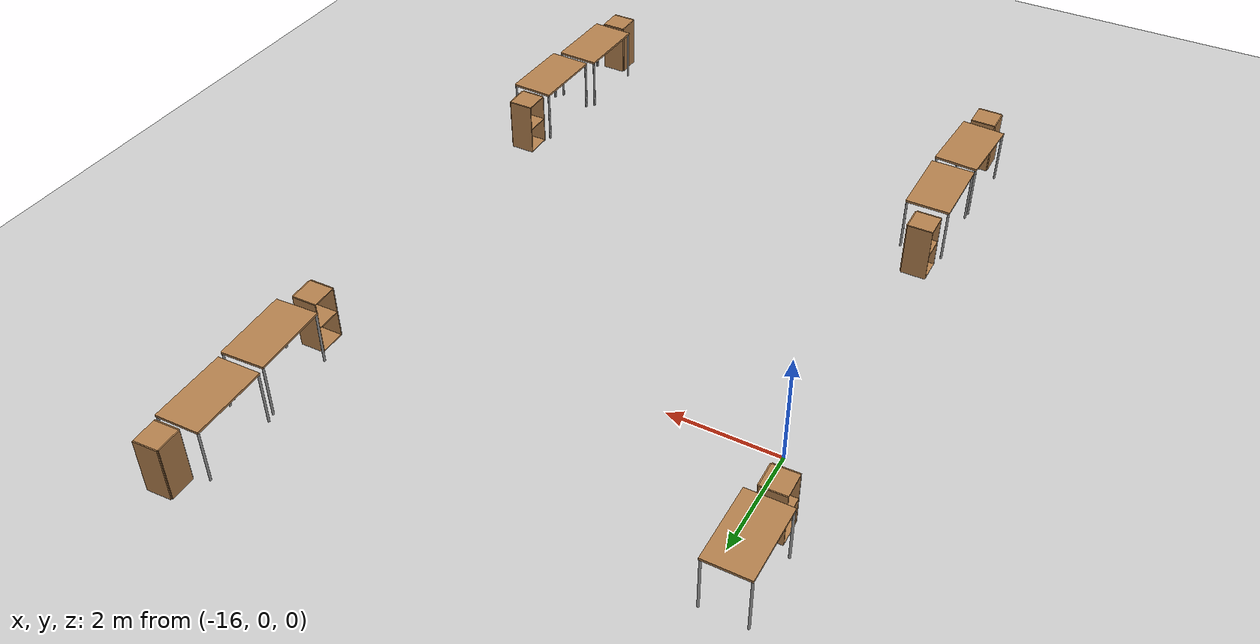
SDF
<sdf version="1.6">
 <world name="default">
  <model name="ground_plane">
   <static>1</static>
   <link name="link">
    <collision name="collision">
     <geometry><plane><normal>0 0 1</normal><size>100 100</size></plane></geometry>
     <surface><friction><ode><mu>100</mu><mu2>50</mu2></ode></friction></surface>
    </collision>
    <visual name="visual">
     <cast_shadows>0</cast_shadows>
     <geometry><plane><normal>0 0 1</normal><size>100 100</size></plane></geometry>
     <material>
      <script><uri>file://media/materials/scripts/gazebo.material</uri><name>Gazebo/Grey</name></script>
     </material>
    </visual>
   </link>
  </model>
  <model name="table_clone_clone_clone">
   <static>0</static>
   <link name="link">
    <collision name="surface">
     <pose>0 0 1 0 -0 0</pose>
     <geometry><box><size>1.5 0.8 0.03</size></box></geometry>
     <surface><friction><ode><mu>0.6</mu><mu2>0.6</mu2></ode></friction></surface>
    </collision>
    <visual name="visual1">
     <pose>0 0 1 0 -0 0</pose>
     <geometry><box><size>1.4 0.8 0.04</size></box></geometry>
     <material>
      <script><uri>file://media/materials/scripts/gazebo.material</uri><name>Gazebo/Wood</name></script>
     </material>
    </visual>
    <collision name="front_left_leg">
     <pose>0.68 0.38 0.5 0 -0 0</pose>
     <geometry><cylinder><radius>0.02</radius><length>1</length></cylinder></geometry>
    </collision>
    <visual name="front_left_leg">
     <pose>0.68 0.38 0.5 0 -0 0</pose>
     <geometry><cylinder><radius>0.02</radius><length>1</length></cylinder></geometry>
     <material>
      <script><uri>file://media/materials/scripts/gazebo.material</uri><name>Gazebo/Grey</name></script>
     </material>
    </visual>
    <collision name="front_right_leg">
     <pose>0.68 -0.38 0.5 0 -0 0</pose>
     <geometry><cylinder><radius>0.02</radius><length>1</length></cylinder></geometry>
    </collision>
    <visual name="front_right_leg">
     <pose>0.68 -0.38 0.5 0 -0 0</pose>
     <geometry><cylinder><radius>0.02</radius><length>1</length></cylinder></geometry>
     <material>
      <script><uri>file://media/materials/scripts/gazebo.material</uri><name>Gazebo/Grey</name></script>
     </material>
    </visual>
    <collision name="back_right_leg">
     <pose>-0.68 -0.38 0.5 0 -0 0</pose>
     <geometry><cylinder><radius>0.02</radius><length>1</length></cylinder></geometry>
    </collision>
    <visual name="back_right_leg">
     <pose>-0.68 -0.38 0.5 0 -0 0</pose>
     <geometry><cylinder><radius>0.02</radius><length>1</length></cylinder></geometry>
     <material>
      <script><uri>file://media/materials/scripts/gazebo.material</uri><name>Gazebo/Grey</name></script>
     </material>
    </visual>
    <collision name="back_left_leg">
     <pose>-0.68 0.38 0.5 0 -0 0</pose>
     <geometry><cylinder><radius>0.02</radius><length>1</length></cylinder></geometry>
    </collision>
    <visual name="back_left_leg">
     <pose>-0.68 0.38 0.5 0 -0 0</pose>
     <geometry><cylinder><radius>0.02</radius><length>1</length></cylinder></geometry>
     <material>
      <script><uri>file://media/materials/scripts/gazebo.material</uri><name>Gazebo/Grey</name></script>
     </material>
    </visual>
    <inertial>
     <inertia><ixx>1</ixx><ixy>0</ixy><ixz>0</ixz><iyy>1</iyy><iyz>0</iyz><izz>1</izz></inertia>
     <mass>1</mass>
    </inertial>
   </link>
   <pose>-16.4451 2.37988 -2e-06 0 -0 1.57134</pose>
  </model>
  <model name="cabinet_clone_clone_clone">
   <static>1</static>
   <link name="cabinet_bottom_plate">
    <inertial>
     <pose>0 0 -1 0 -0 0</pose>
     <inertia><ixx>2.05</ixx><ixy>0</ixy><ixz>0</ixz><iyy>2.05</iyy><iyz>0</iyz><izz>2.05</izz></inertia>
     <mass>25</mass>
    </inertial>
    <collision name="cabinet_bottom_plate_geom">
     <pose>0 0 0.01 0 -0 0</pose>
     <geometry><box><size>0.45 0.45 0.02</size></box></geometry>
    </collision>
    <visual name="cabinet_bottom_plate_geom_visual">
     <pose>0 0 0.01 0 -0 0</pose>
     <geometry><box><size>0.45 0.45 0.02</size></box></geometry>
     <material>
      <script><uri>file://media/materials/scripts/gazebo.material</uri><name>Gazebo/Wood</name></script>
     </material>
    </visual>
    <collision name="cabinet_bottom_plate_geom_cabinet_back_plate">
     <pose>0.235 0 0.51 0 -0 0</pose>
     <geometry><box><size>0.02 0.45 1.02</size></box></geometry>
    </collision>
    <visual name="cabinet_bottom_plate_geom_cabinet_back_plate_visual">
     <pose>0.235 0 0.51 0 -0 0</pose>
     <geometry><box><size>0.02 0.45 1.02</size></box></geometry>
     <material>
      <script><uri>file://media/materials/scripts/gazebo.material</uri><name>Gazebo/Wood</name></script>
     </material>
    </visual>
    <collision name="cabinet_bottom_plate_geom_cabinet_left_plate">
     <pose>0 0.235 0.51 0 -0 0</pose>
     <geometry><box><size>0.45 0.02 1.02</size></box></geometry>
    </collision>
    <visual name="cabinet_bottom_plate_geom_cabinet_left_plate_visual">
     <pose>0 0.235 0.51 0 -0 0</pose>
     <geometry><box><size>0.45 0.02 1.02</size></box></geometry>
     <material>
      <script><uri>file://media/materials/scripts/gazebo.material</uri><name>Gazebo/Wood</name></script>
     </material>
    </visual>
    <collision name="cabinet_bottom_plate_geom_cabinet_middle_plate">
     <pose>0 0 0.51 0 -0 0</pose>
     <geometry><box><size>0.45 0.45 0.02</size></box></geometry>
    </collision>
    <visual name="cabinet_bottom_plate_geom_cabinet_middle_plate_visual">
     <pose>0 0 0.51 0 -0 0</pose>
     <geometry><box><size>0.45 0.45 0.02</size></box></geometry>
     <material>
      <script><uri>file://media/materials/scripts/gazebo.material</uri><name>Gazebo/Wood</name></script>
     </material>
    </visual>
    <collision name="cabinet_bottom_plate_geom_cabinet_right_plate">
     <pose>0 -0.235 0.51 0 -0 0</pose>
     <geometry><box><size>0.45 0.02 1.02</size></box></geometry>
    </collision>
    <visual name="cabinet_bottom_plate_geom_cabinet_right_plate_visual">
     <pose>0 -0.235 0.51 0 -0 0</pose>
     <geometry><box><size>0.45 0.02 1.02</size></box></geometry>
     <material>
      <script><uri>file://media/materials/scripts/gazebo.material</uri><name>Gazebo/Wood</name></script>
     </material>
    </visual>
    <collision name="cabinet_bottom_plate_geom_cabinet_top_plate">
     <pose>0 0 1.01 0 -0 0</pose>
     <geometry><box><size>0.45 0.45 0.02</size></box></geometry>
    </collision>
    <visual name="cabinet_bottom_plate_geom_cabinet_top_plate_visual">
     <pose>0 0 1.01 0 -0 0</pose>
     <geometry><box><size>0.45 0.45 0.02</size></box></geometry>
     <material>
      <script><uri>file://media/materials/scripts/gazebo.material</uri><name>Gazebo/Wood</name></script>
     </material>
    </visual>
   </link>
   <pose>-16.4428 1.3197 0.017437 -0.01053 -0.000628 0.017723</pose>
  </model>
  <model name="cabinet_clone_clone_0_clone">
   <static>1</static>
   <link name="cabinet_bottom_plate">
    <inertial>
     <pose>0 0 -1 0 -0 0</pose>
     <inertia><ixx>2.05</ixx><ixy>0</ixy><ixz>0</ixz><iyy>2.05</iyy><iyz>0</iyz><izz>2.05</izz></inertia>
     <mass>25</mass>
    </inertial>
    <collision name="cabinet_bottom_plate_geom">
     <pose>0 0 0.01 0 -0 0</pose>
     <geometry><box><size>0.45 0.45 0.02</size></box></geometry>
    </collision>
    <visual name="cabinet_bottom_plate_geom_visual">
     <pose>0 0 0.01 0 -0 0</pose>
     <geometry><box><size>0.45 0.45 0.02</size></box></geometry>
     <material>
      <script><uri>file://media/materials/scripts/gazebo.material</uri><name>Gazebo/Wood</name></script>
     </material>
    </visual>
    <collision name="cabinet_bottom_plate_geom_cabinet_back_plate">
     <pose>0.235 0 0.51 0 -0 0</pose>
     <geometry><box><size>0.02 0.45 1.02</size></box></geometry>
    </collision>
    <visual name="cabinet_bottom_plate_geom_cabinet_back_plate_visual">
     <pose>0.235 0 0.51 0 -0 0</pose>
     <geometry><box><size>0.02 0.45 1.02</size></box></geometry>
     <material>
      <script><uri>file://media/materials/scripts/gazebo.material</uri><name>Gazebo/Wood</name></script>
     </material>
    </visual>
    <collision name="cabinet_bottom_plate_geom_cabinet_left_plate">
     <pose>0 0.235 0.51 0 -0 0</pose>
     <geometry><box><size>0.45 0.02 1.02</size></box></geometry>
    </collision>
    <visual name="cabinet_bottom_plate_geom_cabinet_left_plate_visual">
     <pose>0 0.235 0.51 0 -0 0</pose>
     <geometry><box><size>0.45 0.02 1.02</size></box></geometry>
     <material>
      <script><uri>file://media/materials/scripts/gazebo.material</uri><name>Gazebo/Wood</name></script>
     </material>
    </visual>
    <collision name="cabinet_bottom_plate_geom_cabinet_middle_plate">
     <pose>0 0 0.51 0 -0 0</pose>
     <geometry><box><size>0.45 0.45 0.02</size></box></geometry>
    </collision>
    <visual name="cabinet_bottom_plate_geom_cabinet_middle_plate_visual">
     <pose>0 0 0.51 0 -0 0</pose>
     <geometry><box><size>0.45 0.45 0.02</size></box></geometry>
     <material>
      <script><uri>file://media/materials/scripts/gazebo.material</uri><name>Gazebo/Wood</name></script>
     </material>
    </visual>
    <collision name="cabinet_bottom_plate_geom_cabinet_right_plate">
     <pose>0 -0.235 0.51 0 -0 0</pose>
     <geometry><box><size>0.45 0.02 1.02</size></box></geometry>
    </collision>
    <visual name="cabinet_bottom_plate_geom_cabinet_right_plate_visual">
     <pose>0 -0.235 0.51 0 -0 0</pose>
     <geometry><box><size>0.45 0.02 1.02</size></box></geometry>
     <material>
      <script><uri>file://media/materials/scripts/gazebo.material</uri><name>Gazebo/Wood</name></script>
     </material>
    </visual>
    <collision name="cabinet_bottom_plate_geom_cabinet_top_plate">
     <pose>0 0 1.01 0 -0 0</pose>
     <geometry><box><size>0.45 0.45 0.02</size></box></geometry>
    </collision>
    <visual name="cabinet_bottom_plate_geom_cabinet_top_plate_visual">
     <pose>0 0 1.01 0 -0 0</pose>
     <geometry><box><size>0.45 0.45 0.02</size></box></geometry>
     <material>
      <script><uri>file://media/materials/scripts/gazebo.material</uri><name>Gazebo/Wood</name></script>
     </material>
    </visual>
   </link>
   <pose>-8.2361 4.81951 0.017437 0 0 -3.09441</pose>
  </model>
  <model name="table_clone_clone_0_clone">
   <static>0</static>
   <link name="link">
    <collision name="surface">
     <pose>0 0 1 0 -0 0</pose>
     <geometry><box><size>1.5 0.8 0.03</size></box></geometry>
     <surface><friction><ode><mu>0.6</mu><mu2>0.6</mu2></ode></friction></surface>
    </collision>
    <visual name="visual1">
     <pose>0 0 1 0 -0 0</pose>
     <geometry><box><size>1.4 0.8 0.04</size></box></geometry>
     <material>
      <script><uri>file://media/materials/scripts/gazebo.material</uri><name>Gazebo/Wood</name></script>
     </material>
    </visual>
    <collision name="front_left_leg">
     <pose>0.68 0.38 0.5 0 -0 0</pose>
     <geometry><cylinder><radius>0.02</radius><length>1</length></cylinder></geometry>
    </collision>
    <visual name="front_left_leg">
     <pose>0.68 0.38 0.5 0 -0 0</pose>
     <geometry><cylinder><radius>0.02</radius><length>1</length></cylinder></geometry>
     <material>
      <script><uri>file://media/materials/scripts/gazebo.material</uri><name>Gazebo/Grey</name></script>
     </material>
    </visual>
    <collision name="front_right_leg">
     <pose>0.68 -0.38 0.5 0 -0 0</pose>
     <geometry><cylinder><radius>0.02</radius><length>1</length></cylinder></geometry>
    </collision>
    <visual name="front_right_leg">
     <pose>0.68 -0.38 0.5 0 -0 0</pose>
     <geometry><cylinder><radius>0.02</radius><length>1</length></cylinder></geometry>
     <material>
      <script><uri>file://media/materials/scripts/gazebo.material</uri><name>Gazebo/Grey</name></script>
     </material>
    </visual>
    <collision name="back_right_leg">
     <pose>-0.68 -0.38 0.5 0 -0 0</pose>
     <geometry><cylinder><radius>0.02</radius><length>1</length></cylinder></geometry>
    </collision>
    <visual name="back_right_leg">
     <pose>-0.68 -0.38 0.5 0 -0 0</pose>
     <geometry><cylinder><radius>0.02</radius><length>1</length></cylinder></geometry>
     <material>
      <script><uri>file://media/materials/scripts/gazebo.material</uri><name>Gazebo/Grey</name></script>
     </material>
    </visual>
    <collision name="back_left_leg">
     <pose>-0.68 0.38 0.5 0 -0 0</pose>
     <geometry><cylinder><radius>0.02</radius><length>1</length></cylinder></geometry>
    </collision>
    <visual name="back_left_leg">
     <pose>-0.68 0.38 0.5 0 -0 0</pose>
     <geometry><cylinder><radius>0.02</radius><length>1</length></cylinder></geometry>
     <material>
      <script><uri>file://media/materials/scripts/gazebo.material</uri><name>Gazebo/Grey</name></script>
     </material>
    </visual>
    <inertial>
     <inertia><ixx>1</ixx><ixy>0</ixy><ixz>0</ixz><iyy>1</iyy><iyz>0</iyz><izz>1</izz></inertia>
     <mass>1</mass>
    </inertial>
   </link>
   <pose>-8.29871 3.79829 -3e-06 1e-06 1e-06 1.59882</pose>
  </model>
  <model name="table_clone_clone_clone_clone">
   <static>0</static>
   <link name="link">
    <collision name="surface">
     <pose>0 0 1 0 -0 0</pose>
     <geometry><box><size>1.5 0.8 0.03</size></box></geometry>
     <surface><friction><ode><mu>0.6</mu><mu2>0.6</mu2></ode></friction></surface>
    </collision>
    <visual name="visual1">
     <pose>0 0 1 0 -0 0</pose>
     <geometry><box><size>1.4 0.8 0.04</size></box></geometry>
     <material>
      <script><uri>file://media/materials/scripts/gazebo.material</uri><name>Gazebo/Wood</name></script>
     </material>
    </visual>
    <collision name="front_left_leg">
     <pose>0.68 0.38 0.5 0 -0 0</pose>
     <geometry><cylinder><radius>0.02</radius><length>1</length></cylinder></geometry>
    </collision>
    <visual name="front_left_leg">
     <pose>0.68 0.38 0.5 0 -0 0</pose>
     <geometry><cylinder><radius>0.02</radius><length>1</length></cylinder></geometry>
     <material>
      <script><uri>file://media/materials/scripts/gazebo.material</uri><name>Gazebo/Grey</name></script>
     </material>
    </visual>
    <collision name="front_right_leg">
     <pose>0.68 -0.38 0.5 0 -0 0</pose>
     <geometry><cylinder><radius>0.02</radius><length>1</length></cylinder></geometry>
    </collision>
    <visual name="front_right_leg">
     <pose>0.68 -0.38 0.5 0 -0 0</pose>
     <geometry><cylinder><radius>0.02</radius><length>1</length></cylinder></geometry>
     <material>
      <script><uri>file://media/materials/scripts/gazebo.material</uri><name>Gazebo/Grey</name></script>
     </material>
    </visual>
    <collision name="back_right_leg">
     <pose>-0.68 -0.38 0.5 0 -0 0</pose>
     <geometry><cylinder><radius>0.02</radius><length>1</length></cylinder></geometry>
    </collision>
    <visual name="back_right_leg">
     <pose>-0.68 -0.38 0.5 0 -0 0</pose>
     <geometry><cylinder><radius>0.02</radius><length>1</length></cylinder></geometry>
     <material>
      <script><uri>file://media/materials/scripts/gazebo.material</uri><name>Gazebo/Grey</name></script>
     </material>
    </visual>
    <collision name="back_left_leg">
     <pose>-0.68 0.38 0.5 0 -0 0</pose>
     <geometry><cylinder><radius>0.02</radius><length>1</length></cylinder></geometry>
    </collision>
    <visual name="back_left_leg">
     <pose>-0.68 0.38 0.5 0 -0 0</pose>
     <geometry><cylinder><radius>0.02</radius><length>1</length></cylinder></geometry>
     <material>
      <script><uri>file://media/materials/scripts/gazebo.material</uri><name>Gazebo/Grey</name></script>
     </material>
    </visual>
    <inertial>
     <inertia><ixx>1</ixx><ixy>0</ixy><ixz>0</ixz><iyy>1</iyy><iyz>0</iyz><izz>1</izz></inertia>
     <mass>1</mass>
    </inertial>
   </link>
   <pose>-8.20317 2.29226 -1e-06 -1e-06 -0 1.62146</pose>
  </model>
  <model name="cabinet_clone_clone_clone_clone">
   <static>1</static>
   <link name="cabinet_bottom_plate">
    <inertial>
     <pose>0 0 -1 0 -0 0</pose>
     <inertia><ixx>2.05</ixx><ixy>0</ixy><ixz>0</ixz><iyy>2.05</iyy><iyz>0</iyz><izz>2.05</izz></inertia>
     <mass>25</mass>
    </inertial>
    <collision name="cabinet_bottom_plate_geom">
     <pose>0 0 0.01 0 -0 0</pose>
     <geometry><box><size>0.45 0.45 0.02</size></box></geometry>
    </collision>
    <visual name="cabinet_bottom_plate_geom_visual">
     <pose>0 0 0.01 0 -0 0</pose>
     <geometry><box><size>0.45 0.45 0.02</size></box></geometry>
     <material>
      <script><uri>file://media/materials/scripts/gazebo.material</uri><name>Gazebo/Wood</name></script>
     </material>
    </visual>
    <collision name="cabinet_bottom_plate_geom_cabinet_back_plate">
     <pose>0.235 0 0.51 0 -0 0</pose>
     <geometry><box><size>0.02 0.45 1.02</size></box></geometry>
    </collision>
    <visual name="cabinet_bottom_plate_geom_cabinet_back_plate_visual">
     <pose>0.235 0 0.51 0 -0 0</pose>
     <geometry><box><size>0.02 0.45 1.02</size></box></geometry>
     <material>
      <script><uri>file://media/materials/scripts/gazebo.material</uri><name>Gazebo/Wood</name></script>
     </material>
    </visual>
    <collision name="cabinet_bottom_plate_geom_cabinet_left_plate">
     <pose>0 0.235 0.51 0 -0 0</pose>
     <geometry><box><size>0.45 0.02 1.02</size></box></geometry>
    </collision>
    <visual name="cabinet_bottom_plate_geom_cabinet_left_plate_visual">
     <pose>0 0.235 0.51 0 -0 0</pose>
     <geometry><box><size>0.45 0.02 1.02</size></box></geometry>
     <material>
      <script><uri>file://media/materials/scripts/gazebo.material</uri><name>Gazebo/Wood</name></script>
     </material>
    </visual>
    <collision name="cabinet_bottom_plate_geom_cabinet_middle_plate">
     <pose>0 0 0.51 0 -0 0</pose>
     <geometry><box><size>0.45 0.45 0.02</size></box></geometry>
    </collision>
    <visual name="cabinet_bottom_plate_geom_cabinet_middle_plate_visual">
     <pose>0 0 0.51 0 -0 0</pose>
     <geometry><box><size>0.45 0.45 0.02</size></box></geometry>
     <material>
      <script><uri>file://media/materials/scripts/gazebo.material</uri><name>Gazebo/Wood</name></script>
     </material>
    </visual>
    <collision name="cabinet_bottom_plate_geom_cabinet_right_plate">
     <pose>0 -0.235 0.51 0 -0 0</pose>
     <geometry><box><size>0.45 0.02 1.02</size></box></geometry>
    </collision>
    <visual name="cabinet_bottom_plate_geom_cabinet_right_plate_visual">
     <pose>0 -0.235 0.51 0 -0 0</pose>
     <geometry><box><size>0.45 0.02 1.02</size></box></geometry>
     <material>
      <script><uri>file://media/materials/scripts/gazebo.material</uri><name>Gazebo/Wood</name></script>
     </material>
    </visual>
    <collision name="cabinet_bottom_plate_geom_cabinet_top_plate">
     <pose>0 0 1.01 0 -0 0</pose>
     <geometry><box><size>0.45 0.45 0.02</size></box></geometry>
    </collision>
    <visual name="cabinet_bottom_plate_geom_cabinet_top_plate_visual">
     <pose>0 0 1.01 0 -0 0</pose>
     <geometry><box><size>0.45 0.45 0.02</size></box></geometry>
     <material>
      <script><uri>file://media/materials/scripts/gazebo.material</uri><name>Gazebo/Wood</name></script>
     </material>
    </visual>
   </link>
   <pose>-8.19764 1.21371 0.017437 -0.01053 -0.000628 0.017723</pose>
  </model>
  <model name="table_clone_0_clone">
   <static>0</static>
   <link name="link">
    <collision name="surface">
     <pose>0 0 1 0 -0 0</pose>
     <geometry><box><size>1.5 0.8 0.03</size></box></geometry>
     <surface><friction><ode><mu>0.6</mu><mu2>0.6</mu2></ode></friction></surface>
    </collision>
    <visual name="visual1">
     <pose>0 0 1 0 -0 0</pose>
     <geometry><box><size>1.4 0.8 0.04</size></box></geometry>
     <material>
      <script><uri>file://media/materials/scripts/gazebo.material</uri><name>Gazebo/Wood</name></script>
     </material>
    </visual>
    <collision name="front_left_leg">
     <pose>0.68 0.38 0.5 0 -0 0</pose>
     <geometry><cylinder><radius>0.02</radius><length>1</length></cylinder></geometry>
    </collision>
    <visual name="front_left_leg">
     <pose>0.68 0.38 0.5 0 -0 0</pose>
     <geometry><cylinder><radius>0.02</radius><length>1</length></cylinder></geometry>
     <material>
      <script><uri>file://media/materials/scripts/gazebo.material</uri><name>Gazebo/Grey</name></script>
     </material>
    </visual>
    <collision name="front_right_leg">
     <pose>0.68 -0.38 0.5 0 -0 0</pose>
     <geometry><cylinder><radius>0.02</radius><length>1</length></cylinder></geometry>
    </collision>
    <visual name="front_right_leg">
     <pose>0.68 -0.38 0.5 0 -0 0</pose>
     <geometry><cylinder><radius>0.02</radius><length>1</length></cylinder></geometry>
     <material>
      <script><uri>file://media/materials/scripts/gazebo.material</uri><name>Gazebo/Grey</name></script>
     </material>
    </visual>
    <collision name="back_right_leg">
     <pose>-0.68 -0.38 0.5 0 -0 0</pose>
     <geometry><cylinder><radius>0.02</radius><length>1</length></cylinder></geometry>
    </collision>
    <visual name="back_right_leg">
     <pose>-0.68 -0.38 0.5 0 -0 0</pose>
     <geometry><cylinder><radius>0.02</radius><length>1</length></cylinder></geometry>
     <material>
      <script><uri>file://media/materials/scripts/gazebo.material</uri><name>Gazebo/Grey</name></script>
     </material>
    </visual>
    <collision name="back_left_leg">
     <pose>-0.68 0.38 0.5 0 -0 0</pose>
     <geometry><cylinder><radius>0.02</radius><length>1</length></cylinder></geometry>
    </collision>
    <visual name="back_left_leg">
     <pose>-0.68 0.38 0.5 0 -0 0</pose>
     <geometry><cylinder><radius>0.02</radius><length>1</length></cylinder></geometry>
     <material>
      <script><uri>file://media/materials/scripts/gazebo.material</uri><name>Gazebo/Grey</name></script>
     </material>
    </visual>
    <inertial>
     <inertia><ixx>1</ixx><ixy>0</ixy><ixz>0</ixz><iyy>1</iyy><iyz>0</iyz><izz>1</izz></inertia>
     <mass>1</mass>
    </inertial>
   </link>
   <pose>-16.1989 -7.98887 -1e-06 -1e-06 -0 1.5042</pose>
  </model>
  <model name="cabinet_clone_1">
   <static>1</static>
   <link name="cabinet_bottom_plate">
    <inertial>
     <pose>0 0 -1 0 -0 0</pose>
     <inertia><ixx>2.05</ixx><ixy>0</ixy><ixz>0</ixz><iyy>2.05</iyy><iyz>0</iyz><izz>2.05</izz></inertia>
     <mass>25</mass>
    </inertial>
    <collision name="cabinet_bottom_plate_geom">
     <pose>0 0 0.01 0 -0 0</pose>
     <geometry><box><size>0.45 0.45 0.02</size></box></geometry>
    </collision>
    <visual name="cabinet_bottom_plate_geom_visual">
     <pose>0 0 0.01 0 -0 0</pose>
     <geometry><box><size>0.45 0.45 0.02</size></box></geometry>
     <material>
      <script><uri>file://media/materials/scripts/gazebo.material</uri><name>Gazebo/Wood</name></script>
     </material>
    </visual>
    <collision name="cabinet_bottom_plate_geom_cabinet_back_plate">
     <pose>0.235 0 0.51 0 -0 0</pose>
     <geometry><box><size>0.02 0.45 1.02</size></box></geometry>
    </collision>
    <visual name="cabinet_bottom_plate_geom_cabinet_back_plate_visual">
     <pose>0.235 0 0.51 0 -0 0</pose>
     <geometry><box><size>0.02 0.45 1.02</size></box></geometry>
     <material>
      <script><uri>file://media/materials/scripts/gazebo.material</uri><name>Gazebo/Wood</name></script>
     </material>
    </visual>
    <collision name="cabinet_bottom_plate_geom_cabinet_left_plate">
     <pose>0 0.235 0.51 0 -0 0</pose>
     <geometry><box><size>0.45 0.02 1.02</size></box></geometry>
    </collision>
    <visual name="cabinet_bottom_plate_geom_cabinet_left_plate_visual">
     <pose>0 0.235 0.51 0 -0 0</pose>
     <geometry><box><size>0.45 0.02 1.02</size></box></geometry>
     <material>
      <script><uri>file://media/materials/scripts/gazebo.material</uri><name>Gazebo/Wood</name></script>
     </material>
    </visual>
    <collision name="cabinet_bottom_plate_geom_cabinet_middle_plate">
     <pose>0 0 0.51 0 -0 0</pose>
     <geometry><box><size>0.45 0.45 0.02</size></box></geometry>
    </collision>
    <visual name="cabinet_bottom_plate_geom_cabinet_middle_plate_visual">
     <pose>0 0 0.51 0 -0 0</pose>
     <geometry><box><size>0.45 0.45 0.02</size></box></geometry>
     <material>
      <script><uri>file://media/materials/scripts/gazebo.material</uri><name>Gazebo/Wood</name></script>
     </material>
    </visual>
    <collision name="cabinet_bottom_plate_geom_cabinet_right_plate">
     <pose>0 -0.235 0.51 0 -0 0</pose>
     <geometry><box><size>0.45 0.02 1.02</size></box></geometry>
    </collision>
    <visual name="cabinet_bottom_plate_geom_cabinet_right_plate_visual">
     <pose>0 -0.235 0.51 0 -0 0</pose>
     <geometry><box><size>0.45 0.02 1.02</size></box></geometry>
     <material>
      <script><uri>file://media/materials/scripts/gazebo.material</uri><name>Gazebo/Wood</name></script>
     </material>
    </visual>
    <collision name="cabinet_bottom_plate_geom_cabinet_top_plate">
     <pose>0 0 1.01 0 -0 0</pose>
     <geometry><box><size>0.45 0.45 0.02</size></box></geometry>
    </collision>
    <visual name="cabinet_bottom_plate_geom_cabinet_top_plate_visual">
     <pose>0 0 1.01 0 -0 0</pose>
     <geometry><box><size>0.45 0.45 0.02</size></box></geometry>
     <material>
      <script><uri>file://media/materials/scripts/gazebo.material</uri><name>Gazebo/Wood</name></script>
     </material>
    </visual>
   </link>
   <pose>-16.2422 -5.32126 0 0 -0 0.000948</pose>
  </model>
  <model name="table_clone_0_clone_clone">
   <static>0</static>
   <link name="link">
    <collision name="surface">
     <pose>0 0 1 0 -0 0</pose>
     <geometry><box><size>1.5 0.8 0.03</size></box></geometry>
     <surface><friction><ode><mu>0.6</mu><mu2>0.6</mu2></ode></friction></surface>
    </collision>
    <visual name="visual1">
     <pose>0 0 1 0 -0 0</pose>
     <geometry><box><size>1.4 0.8 0.04</size></box></geometry>
     <material>
      <script><uri>file://media/materials/scripts/gazebo.material</uri><name>Gazebo/Wood</name></script>
     </material>
    </visual>
    <collision name="front_left_leg">
     <pose>0.68 0.38 0.5 0 -0 0</pose>
     <geometry><cylinder><radius>0.02</radius><length>1</length></cylinder></geometry>
    </collision>
    <visual name="front_left_leg">
     <pose>0.68 0.38 0.5 0 -0 0</pose>
     <geometry><cylinder><radius>0.02</radius><length>1</length></cylinder></geometry>
     <material>
      <script><uri>file://media/materials/scripts/gazebo.material</uri><name>Gazebo/Grey</name></script>
     </material>
    </visual>
    <collision name="front_right_leg">
     <pose>0.68 -0.38 0.5 0 -0 0</pose>
     <geometry><cylinder><radius>0.02</radius><length>1</length></cylinder></geometry>
    </collision>
    <visual name="front_right_leg">
     <pose>0.68 -0.38 0.5 0 -0 0</pose>
     <geometry><cylinder><radius>0.02</radius><length>1</length></cylinder></geometry>
     <material>
      <script><uri>file://media/materials/scripts/gazebo.material</uri><name>Gazebo/Grey</name></script>
     </material>
    </visual>
    <collision name="back_right_leg">
     <pose>-0.68 -0.38 0.5 0 -0 0</pose>
     <geometry><cylinder><radius>0.02</radius><length>1</length></cylinder></geometry>
    </collision>
    <visual name="back_right_leg">
     <pose>-0.68 -0.38 0.5 0 -0 0</pose>
     <geometry><cylinder><radius>0.02</radius><length>1</length></cylinder></geometry>
     <material>
      <script><uri>file://media/materials/scripts/gazebo.material</uri><name>Gazebo/Grey</name></script>
     </material>
    </visual>
    <collision name="back_left_leg">
     <pose>-0.68 0.38 0.5 0 -0 0</pose>
     <geometry><cylinder><radius>0.02</radius><length>1</length></cylinder></geometry>
    </collision>
    <visual name="back_left_leg">
     <pose>-0.68 0.38 0.5 0 -0 0</pose>
     <geometry><cylinder><radius>0.02</radius><length>1</length></cylinder></geometry>
     <material>
      <script><uri>file://media/materials/scripts/gazebo.material</uri><name>Gazebo/Grey</name></script>
     </material>
    </visual>
    <inertial>
     <inertia><ixx>1</ixx><ixy>0</ixy><ixz>0</ixz><iyy>1</iyy><iyz>0</iyz><izz>1</izz></inertia>
     <mass>1</mass>
    </inertial>
   </link>
   <pose>-16.142 -6.46563 -2e-06 0 0 -1.57475</pose>
  </model>
  <model name="table_clone_0_clone_clone_0">
   <static>0</static>
   <link name="link">
    <collision name="surface">
     <pose>0 0 1 0 -0 0</pose>
     <geometry><box><size>1.5 0.8 0.03</size></box></geometry>
     <surface><friction><ode><mu>0.6</mu><mu2>0.6</mu2></ode></friction></surface>
    </collision>
    <visual name="visual1">
     <pose>0 0 1 0 -0 0</pose>
     <geometry><box><size>1.4 0.8 0.04</size></box></geometry>
     <material>
      <script><uri>file://media/materials/scripts/gazebo.material</uri><name>Gazebo/Wood</name></script>
     </material>
    </visual>
    <collision name="front_left_leg">
     <pose>0.68 0.38 0.5 0 -0 0</pose>
     <geometry><cylinder><radius>0.02</radius><length>1</length></cylinder></geometry>
    </collision>
    <visual name="front_left_leg">
     <pose>0.68 0.38 0.5 0 -0 0</pose>
     <geometry><cylinder><radius>0.02</radius><length>1</length></cylinder></geometry>
     <material>
      <script><uri>file://media/materials/scripts/gazebo.material</uri><name>Gazebo/Grey</name></script>
     </material>
    </visual>
    <collision name="front_right_leg">
     <pose>0.68 -0.38 0.5 0 -0 0</pose>
     <geometry><cylinder><radius>0.02</radius><length>1</length></cylinder></geometry>
    </collision>
    <visual name="front_right_leg">
     <pose>0.68 -0.38 0.5 0 -0 0</pose>
     <geometry><cylinder><radius>0.02</radius><length>1</length></cylinder></geometry>
     <material>
      <script><uri>file://media/materials/scripts/gazebo.material</uri><name>Gazebo/Grey</name></script>
     </material>
    </visual>
    <collision name="back_right_leg">
     <pose>-0.68 -0.38 0.5 0 -0 0</pose>
     <geometry><cylinder><radius>0.02</radius><length>1</length></cylinder></geometry>
    </collision>
    <visual name="back_right_leg">
     <pose>-0.68 -0.38 0.5 0 -0 0</pose>
     <geometry><cylinder><radius>0.02</radius><length>1</length></cylinder></geometry>
     <material>
      <script><uri>file://media/materials/scripts/gazebo.material</uri><name>Gazebo/Grey</name></script>
     </material>
    </visual>
    <collision name="back_left_leg">
     <pose>-0.68 0.38 0.5 0 -0 0</pose>
     <geometry><cylinder><radius>0.02</radius><length>1</length></cylinder></geometry>
    </collision>
    <visual name="back_left_leg">
     <pose>-0.68 0.38 0.5 0 -0 0</pose>
     <geometry><cylinder><radius>0.02</radius><length>1</length></cylinder></geometry>
     <material>
      <script><uri>file://media/materials/scripts/gazebo.material</uri><name>Gazebo/Grey</name></script>
     </material>
    </visual>
    <inertial>
     <inertia><ixx>1</ixx><ixy>0</ixy><ixz>0</ixz><iyy>1</iyy><iyz>0</iyz><izz>1</izz></inertia>
     <mass>1</mass>
    </inertial>
   </link>
   <pose>-8.05156 -6.45782 -8e-06 0 -2e-06 -1.60539</pose>
  </model>
  <model name="table_clone_0_clone_clone_1">
   <static>0</static>
   <link name="link">
    <collision name="surface">
     <pose>0 0 1 0 -0 0</pose>
     <geometry><box><size>1.5 0.8 0.03</size></box></geometry>
     <surface><friction><ode><mu>0.6</mu><mu2>0.6</mu2></ode></friction></surface>
    </collision>
    <visual name="visual1">
     <pose>0 0 1 0 -0 0</pose>
     <geometry><box><size>1.4 0.8 0.04</size></box></geometry>
     <material>
      <script><uri>file://media/materials/scripts/gazebo.material</uri><name>Gazebo/Wood</name></script>
     </material>
    </visual>
    <collision name="front_left_leg">
     <pose>0.68 0.38 0.5 0 -0 0</pose>
     <geometry><cylinder><radius>0.02</radius><length>1</length></cylinder></geometry>
    </collision>
    <visual name="front_left_leg">
     <pose>0.68 0.38 0.5 0 -0 0</pose>
     <geometry><cylinder><radius>0.02</radius><length>1</length></cylinder></geometry>
     <material>
      <script><uri>file://media/materials/scripts/gazebo.material</uri><name>Gazebo/Grey</name></script>
     </material>
    </visual>
    <collision name="front_right_leg">
     <pose>0.68 -0.38 0.5 0 -0 0</pose>
     <geometry><cylinder><radius>0.02</radius><length>1</length></cylinder></geometry>
    </collision>
    <visual name="front_right_leg">
     <pose>0.68 -0.38 0.5 0 -0 0</pose>
     <geometry><cylinder><radius>0.02</radius><length>1</length></cylinder></geometry>
     <material>
      <script><uri>file://media/materials/scripts/gazebo.material</uri><name>Gazebo/Grey</name></script>
     </material>
    </visual>
    <collision name="back_right_leg">
     <pose>-0.68 -0.38 0.5 0 -0 0</pose>
     <geometry><cylinder><radius>0.02</radius><length>1</length></cylinder></geometry>
    </collision>
    <visual name="back_right_leg">
     <pose>-0.68 -0.38 0.5 0 -0 0</pose>
     <geometry><cylinder><radius>0.02</radius><length>1</length></cylinder></geometry>
     <material>
      <script><uri>file://media/materials/scripts/gazebo.material</uri><name>Gazebo/Grey</name></script>
     </material>
    </visual>
    <collision name="back_left_leg">
     <pose>-0.68 0.38 0.5 0 -0 0</pose>
     <geometry><cylinder><radius>0.02</radius><length>1</length></cylinder></geometry>
    </collision>
    <visual name="back_left_leg">
     <pose>-0.68 0.38 0.5 0 -0 0</pose>
     <geometry><cylinder><radius>0.02</radius><length>1</length></cylinder></geometry>
     <material>
      <script><uri>file://media/materials/scripts/gazebo.material</uri><name>Gazebo/Grey</name></script>
     </material>
    </visual>
    <inertial>
     <inertia><ixx>1</ixx><ixy>0</ixy><ixz>0</ixz><iyy>1</iyy><iyz>0</iyz><izz>1</izz></inertia>
     <mass>1</mass>
    </inertial>
   </link>
   <pose>-8.21552 -7.95305 -9e-06 0 0 -1.60537</pose>
  </model>
  <model name="cabinet_clone_1_clone">
   <static>1</static>
   <link name="cabinet_bottom_plate">
    <inertial>
     <pose>0 0 -1 0 -0 0</pose>
     <inertia><ixx>2.05</ixx><ixy>0</ixy><ixz>0</ixz><iyy>2.05</iyy><iyz>0</iyz><izz>2.05</izz></inertia>
     <mass>25</mass>
    </inertial>
    <collision name="cabinet_bottom_plate_geom">
     <pose>0 0 0.01 0 -0 0</pose>
     <geometry><box><size>0.45 0.45 0.02</size></box></geometry>
    </collision>
    <visual name="cabinet_bottom_plate_geom_visual">
     <pose>0 0 0.01 0 -0 0</pose>
     <geometry><box><size>0.45 0.45 0.02</size></box></geometry>
     <material>
      <script><uri>file://media/materials/scripts/gazebo.material</uri><name>Gazebo/Wood</name></script>
     </material>
    </visual>
    <collision name="cabinet_bottom_plate_geom_cabinet_back_plate">
     <pose>0.235 0 0.51 0 -0 0</pose>
     <geometry><box><size>0.02 0.45 1.02</size></box></geometry>
    </collision>
    <visual name="cabinet_bottom_plate_geom_cabinet_back_plate_visual">
     <pose>0.235 0 0.51 0 -0 0</pose>
     <geometry><box><size>0.02 0.45 1.02</size></box></geometry>
     <material>
      <script><uri>file://media/materials/scripts/gazebo.material</uri><name>Gazebo/Wood</name></script>
     </material>
    </visual>
    <collision name="cabinet_bottom_plate_geom_cabinet_left_plate">
     <pose>0 0.235 0.51 0 -0 0</pose>
     <geometry><box><size>0.45 0.02 1.02</size></box></geometry>
    </collision>
    <visual name="cabinet_bottom_plate_geom_cabinet_left_plate_visual">
     <pose>0 0.235 0.51 0 -0 0</pose>
     <geometry><box><size>0.45 0.02 1.02</size></box></geometry>
     <material>
      <script><uri>file://media/materials/scripts/gazebo.material</uri><name>Gazebo/Wood</name></script>
     </material>
    </visual>
    <collision name="cabinet_bottom_plate_geom_cabinet_middle_plate">
     <pose>0 0 0.51 0 -0 0</pose>
     <geometry><box><size>0.45 0.45 0.02</size></box></geometry>
    </collision>
    <visual name="cabinet_bottom_plate_geom_cabinet_middle_plate_visual">
     <pose>0 0 0.51 0 -0 0</pose>
     <geometry><box><size>0.45 0.45 0.02</size></box></geometry>
     <material>
      <script><uri>file://media/materials/scripts/gazebo.material</uri><name>Gazebo/Wood</name></script>
     </material>
    </visual>
    <collision name="cabinet_bottom_plate_geom_cabinet_right_plate">
     <pose>0 -0.235 0.51 0 -0 0</pose>
     <geometry><box><size>0.45 0.02 1.02</size></box></geometry>
    </collision>
    <visual name="cabinet_bottom_plate_geom_cabinet_right_plate_visual">
     <pose>0 -0.235 0.51 0 -0 0</pose>
     <geometry><box><size>0.45 0.02 1.02</size></box></geometry>
     <material>
      <script><uri>file://media/materials/scripts/gazebo.material</uri><name>Gazebo/Wood</name></script>
     </material>
    </visual>
    <collision name="cabinet_bottom_plate_geom_cabinet_top_plate">
     <pose>0 0 1.01 0 -0 0</pose>
     <geometry><box><size>0.45 0.45 0.02</size></box></geometry>
    </collision>
    <visual name="cabinet_bottom_plate_geom_cabinet_top_plate_visual">
     <pose>0 0 1.01 0 -0 0</pose>
     <geometry><box><size>0.45 0.45 0.02</size></box></geometry>
     <material>
      <script><uri>file://media/materials/scripts/gazebo.material</uri><name>Gazebo/Wood</name></script>
     </material>
    </visual>
   </link>
   <pose>-8.13203 -5.40721 0 0 -0 0.000948</pose>
  </model>
  <model name="cabinet_clone_0_clone">
   <static>1</static>
   <link name="cabinet_bottom_plate">
    <inertial>
     <pose>0 0 -1 0 -0 0</pose>
     <inertia><ixx>2.05</ixx><ixy>0</ixy><ixz>0</ixz><iyy>2.05</iyy><iyz>0</iyz><izz>2.05</izz></inertia>
     <mass>25</mass>
    </inertial>
    <collision name="cabinet_bottom_plate_geom">
     <pose>0 0 0.01 0 -0 0</pose>
     <geometry><box><size>0.45 0.45 0.02</size></box></geometry>
    </collision>
    <visual name="cabinet_bottom_plate_geom_visual">
     <pose>0 0 0.01 0 -0 0</pose>
     <geometry><box><size>0.45 0.45 0.02</size></box></geometry>
     <material>
      <script><uri>file://media/materials/scripts/gazebo.material</uri><name>Gazebo/Wood</name></script>
     </material>
    </visual>
    <collision name="cabinet_bottom_plate_geom_cabinet_back_plate">
     <pose>0.235 0 0.51 0 -0 0</pose>
     <geometry><box><size>0.02 0.45 1.02</size></box></geometry>
    </collision>
    <visual name="cabinet_bottom_plate_geom_cabinet_back_plate_visual">
     <pose>0.235 0 0.51 0 -0 0</pose>
     <geometry><box><size>0.02 0.45 1.02</size></box></geometry>
     <material>
      <script><uri>file://media/materials/scripts/gazebo.material</uri><name>Gazebo/Wood</name></script>
     </material>
    </visual>
    <collision name="cabinet_bottom_plate_geom_cabinet_left_plate">
     <pose>0 0.235 0.51 0 -0 0</pose>
     <geometry><box><size>0.45 0.02 1.02</size></box></geometry>
    </collision>
    <visual name="cabinet_bottom_plate_geom_cabinet_left_plate_visual">
     <pose>0 0.235 0.51 0 -0 0</pose>
     <geometry><box><size>0.45 0.02 1.02</size></box></geometry>
     <material>
      <script><uri>file://media/materials/scripts/gazebo.material</uri><name>Gazebo/Wood</name></script>
     </material>
    </visual>
    <collision name="cabinet_bottom_plate_geom_cabinet_middle_plate">
     <pose>0 0 0.51 0 -0 0</pose>
     <geometry><box><size>0.45 0.45 0.02</size></box></geometry>
    </collision>
    <visual name="cabinet_bottom_plate_geom_cabinet_middle_plate_visual">
     <pose>0 0 0.51 0 -0 0</pose>
     <geometry><box><size>0.45 0.45 0.02</size></box></geometry>
     <material>
      <script><uri>file://media/materials/scripts/gazebo.material</uri><name>Gazebo/Wood</name></script>
     </material>
    </visual>
    <collision name="cabinet_bottom_plate_geom_cabinet_right_plate">
     <pose>0 -0.235 0.51 0 -0 0</pose>
     <geometry><box><size>0.45 0.02 1.02</size></box></geometry>
    </collision>
    <visual name="cabinet_bottom_plate_geom_cabinet_right_plate_visual">
     <pose>0 -0.235 0.51 0 -0 0</pose>
     <geometry><box><size>0.45 0.02 1.02</size></box></geometry>
     <material>
      <script><uri>file://media/materials/scripts/gazebo.material</uri><name>Gazebo/Wood</name></script>
     </material>
    </visual>
    <collision name="cabinet_bottom_plate_geom_cabinet_top_plate">
     <pose>0 0 1.01 0 -0 0</pose>
     <geometry><box><size>0.45 0.45 0.02</size></box></geometry>
    </collision>
    <visual name="cabinet_bottom_plate_geom_cabinet_top_plate_visual">
     <pose>0 0 1.01 0 -0 0</pose>
     <geometry><box><size>0.45 0.45 0.02</size></box></geometry>
     <material>
      <script><uri>file://media/materials/scripts/gazebo.material</uri><name>Gazebo/Wood</name></script>
     </material>
    </visual>
   </link>
   <pose>-16.1875 -9.0556 0 0 -0 3.13215</pose>
  </model>
  <model name="cabinet_clone_0_clone_0">
   <static>1</static>
   <link name="cabinet_bottom_plate">
    <inertial>
     <pose>0 0 -1 0 -0 0</pose>
     <inertia><ixx>2.05</ixx><ixy>0</ixy><ixz>0</ixz><iyy>2.05</iyy><iyz>0</iyz><izz>2.05</izz></inertia>
     <mass>25</mass>
    </inertial>
    <collision name="cabinet_bottom_plate_geom">
     <pose>0 0 0.01 0 -0 0</pose>
     <geometry><box><size>0.45 0.45 0.02</size></box></geometry>
    </collision>
    <visual name="cabinet_bottom_plate_geom_visual">
     <pose>0 0 0.01 0 -0 0</pose>
     <geometry><box><size>0.45 0.45 0.02</size></box></geometry>
     <material>
      <script><uri>file://media/materials/scripts/gazebo.material</uri><name>Gazebo/Wood</name></script>
     </material>
    </visual>
    <collision name="cabinet_bottom_plate_geom_cabinet_back_plate">
     <pose>0.235 0 0.51 0 -0 0</pose>
     <geometry><box><size>0.02 0.45 1.02</size></box></geometry>
    </collision>
    <visual name="cabinet_bottom_plate_geom_cabinet_back_plate_visual">
     <pose>0.235 0 0.51 0 -0 0</pose>
     <geometry><box><size>0.02 0.45 1.02</size></box></geometry>
     <material>
      <script><uri>file://media/materials/scripts/gazebo.material</uri><name>Gazebo/Wood</name></script>
     </material>
    </visual>
    <collision name="cabinet_bottom_plate_geom_cabinet_left_plate">
     <pose>0 0.235 0.51 0 -0 0</pose>
     <geometry><box><size>0.45 0.02 1.02</size></box></geometry>
    </collision>
    <visual name="cabinet_bottom_plate_geom_cabinet_left_plate_visual">
     <pose>0 0.235 0.51 0 -0 0</pose>
     <geometry><box><size>0.45 0.02 1.02</size></box></geometry>
     <material>
      <script><uri>file://media/materials/scripts/gazebo.material</uri><name>Gazebo/Wood</name></script>
     </material>
    </visual>
    <collision name="cabinet_bottom_plate_geom_cabinet_middle_plate">
     <pose>0 0 0.51 0 -0 0</pose>
     <geometry><box><size>0.45 0.45 0.02</size></box></geometry>
    </collision>
    <visual name="cabinet_bottom_plate_geom_cabinet_middle_plate_visual">
     <pose>0 0 0.51 0 -0 0</pose>
     <geometry><box><size>0.45 0.45 0.02</size></box></geometry>
     <material>
      <script><uri>file://media/materials/scripts/gazebo.material</uri><name>Gazebo/Wood</name></script>
     </material>
    </visual>
    <collision name="cabinet_bottom_plate_geom_cabinet_right_plate">
     <pose>0 -0.235 0.51 0 -0 0</pose>
     <geometry><box><size>0.45 0.02 1.02</size></box></geometry>
    </collision>
    <visual name="cabinet_bottom_plate_geom_cabinet_right_plate_visual">
     <pose>0 -0.235 0.51 0 -0 0</pose>
     <geometry><box><size>0.45 0.02 1.02</size></box></geometry>
     <material>
      <script><uri>file://media/materials/scripts/gazebo.material</uri><name>Gazebo/Wood</name></script>
     </material>
    </visual>
    <collision name="cabinet_bottom_plate_geom_cabinet_top_plate">
     <pose>0 0 1.01 0 -0 0</pose>
     <geometry><box><size>0.45 0.45 0.02</size></box></geometry>
    </collision>
    <visual name="cabinet_bottom_plate_geom_cabinet_top_plate_visual">
     <pose>0 0 1.01 0 -0 0</pose>
     <geometry><box><size>0.45 0.45 0.02</size></box></geometry>
     <material>
      <script><uri>file://media/materials/scripts/gazebo.material</uri><name>Gazebo/Wood</name></script>
     </material>
    </visual>
   </link>
   <pose>-8.2186 -8.95412 0 0 -0 3.13215</pose>
  </model>
 </world>
</sdf>
